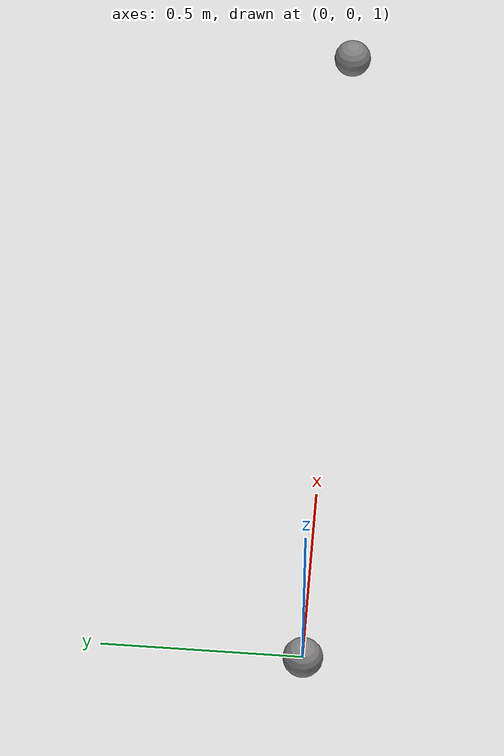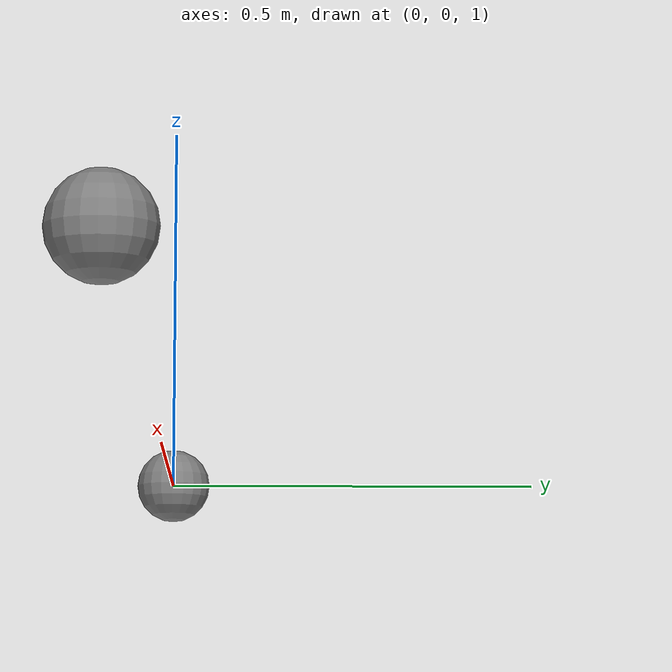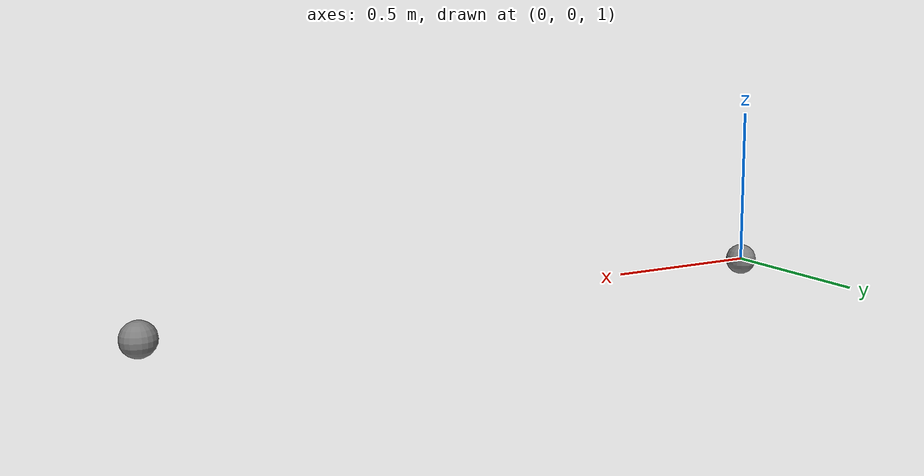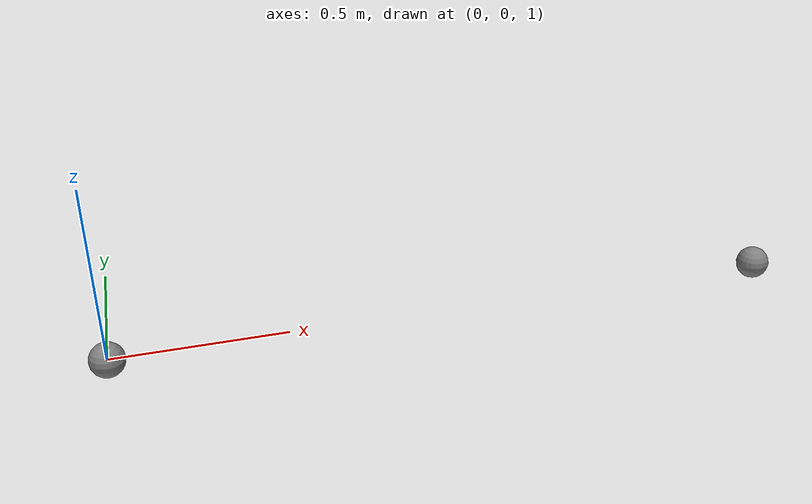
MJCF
<mujoco model="slide_dof_length">
        <option gravity="0 0 -9.81" timestep="0.002">
            <flag sleep="enable"/>
        </option>
        <worldbody>
            <body name="link1" pos="0 0 1">
                <joint name="slide1" type="slide" axis="0 0 1"/>
                <geom type="sphere" size="0.05" mass="1.0"/>
                <body name="link2" pos="2 0 0">
                    <geom type="sphere" size="0.05" mass="0.5"/>
                </body>
            </body>
        </worldbody>
    </mujoco>
